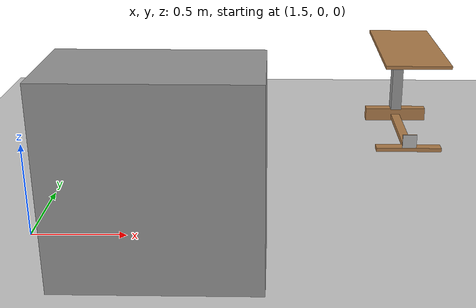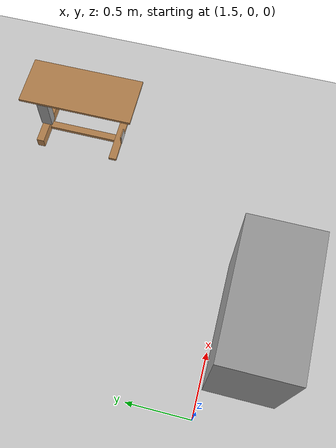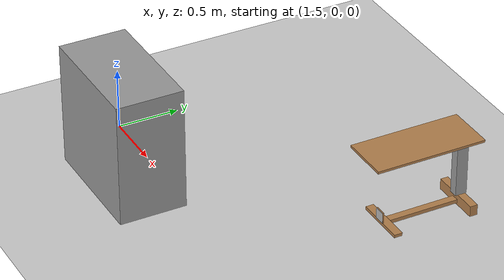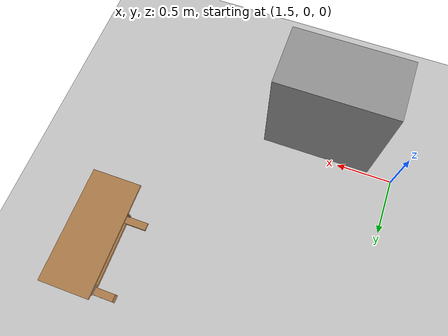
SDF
<sdf version="1.7">
 <world name="default">
  <model name="ground_plane">
   <static>1</static>
   <link name="link">
    <collision name="collision">
     <geometry><plane><normal>0 0 1</normal><size>100 100</size></plane></geometry>
     <surface><friction><ode><mu>100</mu><mu2>50</mu2></ode></friction></surface>
    </collision>
    <visual name="visual">
     <cast_shadows>0</cast_shadows>
     <geometry><plane><normal>0 0 1</normal><size>100 100</size></plane></geometry>
     <material>
      <script><uri>file://media/materials/scripts/gazebo.material</uri><name>Gazebo/Grey</name></script>
     </material>
    </visual>
   </link>
  </model>
  <model name="bed_table">
   <link name="link">
    <inertial>
     <pose>0 0.449 0.001 0 -0 0</pose>
     <mass>10</mass>
     <inertia><ixx>1</ixx><ixy>0</ixy><ixz>0</ixz><iyy>1</iyy><iyz>0</iyz><izz>1</izz></inertia>
    </inertial>
    <visual name="top_board">
     <pose>0 0.449 0.625 0 -0 0</pose>
     <geometry><box><size>0.398 0.898 0.02</size></box></geometry>
     <material>
      <script><uri>model://base_materials/wood/scripts/wood.material</uri><name>base_materials/wood</name></script>
     </material>
    </visual>
    <collision name="collision_top_board">
     <pose>0 0.449 0.625 0 -0 0</pose>
     <geometry><box><size>0.398 0.898 0.02</size></box></geometry>
    </collision>
    <visual name="right_pole">
     <pose>0 0.817 0.3515 0 -0 0</pose>
     <geometry><box><size>0.072 0.094 0.527</size></box></geometry>
     <material>
      <script><uri>model://base_materials/color/scripts</uri><name>hsr_color/grey</name></script>
     </material>
    </visual>
    <collision name="collision_right_pole">
     <pose>0 0.817 0.3515 0 -0 0</pose>
     <geometry><box><size>0.072 0.094 0.527</size></box></geometry>
    </collision>
    <visual name="right_bottom_pole">
     <pose>0 0.8225 0.044 0 -0 0</pose>
     <geometry><box><size>0.42 0.063 0.088</size></box></geometry>
     <material>
      <script><uri>model://base_materials/wood/scripts/wood.material</uri><name>base_materials/wood</name></script>
     </material>
    </visual>
    <collision name="collision_right_bottom_pole">
     <pose>0 0.8225 0.044 0 -0 0</pose>
     <geometry><box><size>0.42 0.063 0.088</size></box></geometry>
    </collision>
    <visual name="bottom_center_pole">
     <pose>0 0.502 0.03 0 -0 0</pose>
     <geometry><box><size>0.06 0.578 0.03</size></box></geometry>
     <material>
      <script><uri>model://base_materials/wood/scripts/wood.material</uri><name>base_materials/wood</name></script>
     </material>
    </visual>
    <collision name="collision_bottom_center_pole">
     <pose>0 0.502 0.03 0 -0 0</pose>
     <geometry><box><size>0.06 0.578 0.03</size></box></geometry>
    </collision>
    <visual name="left_bottom_pole">
     <pose>0 0.18 0.0325 0 -0 0</pose>
     <geometry><box><size>0.418 0.066 0.025</size></box></geometry>
     <material>
      <script><uri>model://base_materials/wood/scripts/wood.material</uri><name>base_materials/wood</name></script>
     </material>
    </visual>
    <collision name="collision_left_bottom_pole">
     <pose>0 0.18 0.0325 0 -0 0</pose>
     <geometry><box><size>0.418 0.066 0.025</size></box></geometry>
    </collision>
    <visual name="marker_0010">
     <pose>0 0.14 0.093 0 -0 0</pose>
     <geometry><box><size>0.09 0.001 0.09</size></box></geometry>
     <material>
      <script>
       <uri>model://bed_table/marker/0010/scripts</uri>
       <uri>model://bed_table/marker/0010/textures</uri>
       <name>Marker/0010</name>
      </script>
     </material>
    </visual>
    <collision name="collision_marker_0010">
     <pose>0 0.14 0.093 0 -0 0</pose>
     <geometry><box><size>0.09 0.001 0.09</size></box></geometry>
    </collision>
    <visual name="marker_0010_back_plate">
     <pose>0 0.146 0.093 0 -0 0</pose>
     <geometry><box><size>0.09 0.01 0.09</size></box></geometry>
     <material>
      <script><uri>model://base_materials/wood/scripts/wood.material</uri><name>base_materials/wood</name></script>
     </material>
    </visual>
    <collision name="collision_marker_0010_back_plate">
     <pose>0 0.146 0.093 0 -0 0</pose>
     <geometry><box><size>0.09 0.01 0.09</size></box></geometry>
    </collision>
    <velocity_decay><linear>0</linear><angular>0</angular></velocity_decay>
   </link>
   <static>1</static>
   <pose>3.62919 0.964774 0 0 -0 0</pose>
  </model>
  <model name="unit_box_0">
   <pose>2.22557 -0.2932 0.5 0 -0 0</pose>
   <link name="link">
    <inertial>
     <mass>1</mass>
     <inertia>
      <ixx>0.166667</ixx>
      <ixy>0</ixy>
      <ixz>0</ixz>
      <iyy>0.166667</iyy>
      <iyz>0</iyz>
      <izz>0.166667</izz>
     </inertia>
    </inertial>
    <collision name="collision"><geometry><box><size>1 0.540779 1</size></box></geometry></collision>
    <visual name="visual">
     <geometry><box><size>1 0.540779 1</size></box></geometry>
     <material>
      <script><name>Gazebo/Grey</name><uri>file://media/materials/scripts/gazebo.material</uri></script>
     </material>
    </visual>
   </link>
  </model>
 </world>
</sdf>
